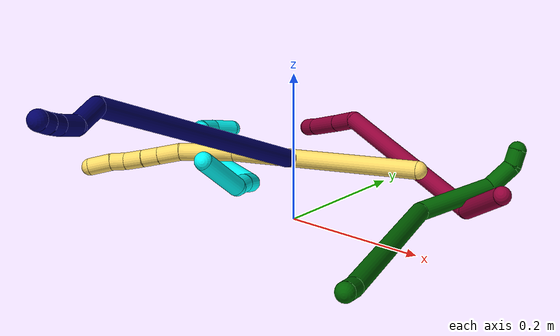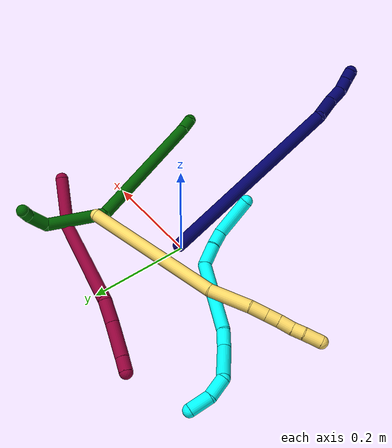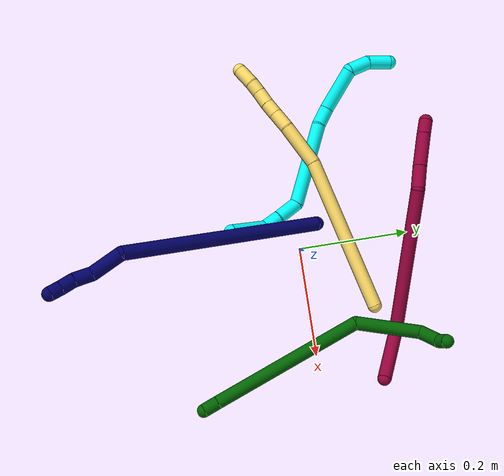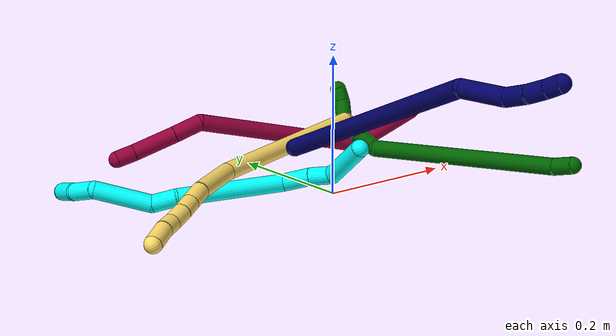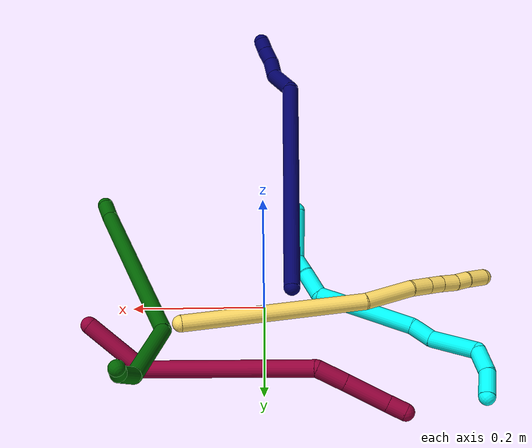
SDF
<sdf version="1.7">
 <world name="default">
  <model name="photoneo_s_sensor">
   <static>1</static>
   <pose>0 0 2 1.57079 1.57079 3.14159</pose>
   <link name="link">
    <inertial><mass>0.1</mass></inertial>
    <sensor name="sensor" type="depth">
     <update_rate>30</update_rate>
     <camera>
      <horizontal_fov>1.22</horizontal_fov>
      <image><width>1920</width><height>1200</height><format>B8G8R8</format></image>
      <clip><near>0.1</near><far>4</far></clip>
      <depth_camera><output>points</output></depth_camera>
     </camera>
     <plugin name="camera_plugin" filename="libgazebo_ros_depth_camera.so">
      <baseline>0.2</baseline>
      <alwaysOn>1</alwaysOn>
      <updateRate>0.0</updateRate>
      <cameraName>camera_ir</cameraName>
      <imageTopicName>/camera/color/image_raw</imageTopicName>
      <cameraInfoTopicName>/camera/color/camera_info</cameraInfoTopicName>
      <depthImageTopicName>/camera/depth/image_raw</depthImageTopicName>
      <depthImageCameraInfoTopicName>/camera/depth/camera_info</depthImageCameraInfoTopicName>
      <pointCloudTopicName>/camera/depth/points</pointCloudTopicName>
      <frameName>fr_optical</frameName>
      <pointCloudCutoff>0.1</pointCloudCutoff>
      <pointCloudCutoffMax>2.0</pointCloudCutoffMax>
      <distortionK1>0</distortionK1>
      <distortionK2>0</distortionK2>
      <distortionK3>0</distortionK3>
      <distortionT1>0</distortionT1>
      <distortionT2>0</distortionT2>
      <CxPrime>0</CxPrime>
      <Cx>0</Cx>
      <Cy>0</Cy>
      <focalLength>0</focalLength>
      <hackBaseline>0</hackBaseline>
     </plugin>
    </sensor>
   </link>
  </model>
  <model name="bin">
   <static>1</static>
   <link name="bottom">
    <collision name="collision-bottom">
     <pose>0 0 -0.01 0 -0 0</pose>
     <geometry><box><size>0.8 0.6 0.02</size></box></geometry>
     <surface>
      <friction><ode><mu>100</mu><mu2>100</mu2></ode></friction>
      <contact><collide_bitmask>65535</collide_bitmask></contact>
     </surface>
    </collision>
   </link>
   <link name="west_wall">
    <collision name="collision-west_wall">
     <pose>-0.41 0 0.1 0 -0 0</pose>
     <geometry><box><size>0.02 0.6 0.2</size></box></geometry>
     <surface>
      <friction><ode><mu>100</mu><mu2>100</mu2></ode></friction>
      <contact><collide_bitmask>65535</collide_bitmask></contact>
     </surface>
    </collision>
   </link>
   <link name="east_wall">
    <collision name="collision-east_wall">
     <pose>0.41 0 0.1 0 -0 0</pose>
     <geometry><box><size>0.02 0.6 0.2</size></box></geometry>
     <surface>
      <friction><ode><mu>100</mu><mu2>100</mu2></ode></friction>
      <contact><collide_bitmask>65535</collide_bitmask></contact>
     </surface>
    </collision>
   </link>
   <link name="south_wall">
    <collision name="collision-south_wall">
     <pose>0 -0.31 0.1 0 -0 0</pose>
     <geometry><box><size>0.8 0.02 0.2</size></box></geometry>
     <surface>
      <friction><ode><mu>100</mu><mu2>100</mu2></ode></friction>
      <contact><collide_bitmask>65535</collide_bitmask></contact>
     </surface>
    </collision>
   </link>
   <link name="north_wall">
    <collision name="collision-north_wall">
     <pose>0 0.31 0.1 0 -0 0</pose>
     <geometry><box><size>0.8 0.02 0.2</size></box></geometry>
     <surface>
      <friction><ode><mu>100</mu><mu2>100</mu2></ode></friction>
      <contact><collide_bitmask>65535</collide_bitmask></contact>
     </surface>
    </collision>
   </link>
  </model>
  <model name="3">
   <static>0</static>
   <link name="3">
    <collision name="collision-cylinder-e_1_1_4">
     <pose>0.022582 -0.002578 0.031527 0.081576 0.619987 0.026143</pose>
     <geometry><cylinder><radius>0.0125</radius><length>0.077731</length></cylinder></geometry>
     <surface>
      <friction><ode><mu>1.16</mu><mu2>1.16</mu2><slip1>0</slip1><slip2>0</slip2></ode></friction>
      <contact><ode><kp>1e+06</kp><kd>1</kd><max_vel>0</max_vel><min_depth>0.001</min_depth></ode></contact>
     </surface>
    </collision>
    <visual name="visual-cylinder-e_1_1_4">
     <pose>0.022582 -0.002578 0.031527 0.081576 0.619987 0.026143</pose>
     <geometry><cylinder><radius>0.0125</radius><length>0.077731</length></cylinder></geometry>
     <material><ambient>0.003922 1 0.996078 1</ambient></material>
    </visual>
    <collision name="collision-cylinder-e_2_4_5">
     <pose>0.044304 -0.007715 0.078894 0.160226 -0.053531 -0.004299</pose>
     <geometry><cylinder><radius>0.0125</radius><length>0.032137</length></cylinder></geometry>
     <surface>
      <friction><ode><mu>1.16</mu><mu2>1.16</mu2><slip1>0</slip1><slip2>0</slip2></ode></friction>
      <contact><ode><kp>1e+06</kp><kd>1</kd><max_vel>0</max_vel><min_depth>0.001</min_depth></ode></contact>
     </surface>
    </collision>
    <visual name="visual-cylinder-e_2_4_5">
     <pose>0.044304 -0.007715 0.078894 0.160226 -0.053531 -0.004299</pose>
     <geometry><cylinder><radius>0.0125</radius><length>0.032137</length></cylinder></geometry>
     <material><ambient>0.003922 1 0.996078 1</ambient></material>
    </visual>
    <collision name="collision-cylinder-e_3_5_6">
     <pose>0.043959 -0.011299 0.116284 0.047477 0.023874 0.000567</pose>
     <geometry><cylinder><radius>0.0125</radius><length>0.043162</length></cylinder></geometry>
     <surface>
      <friction><ode><mu>1.16</mu><mu2>1.16</mu2><slip1>0</slip1><slip2>0</slip2></ode></friction>
      <contact><ode><kp>1e+06</kp><kd>1</kd><max_vel>0</max_vel><min_depth>0.001</min_depth></ode></contact>
     </surface>
    </collision>
    <visual name="visual-cylinder-e_3_5_6">
     <pose>0.043959 -0.011299 0.116284 0.047477 0.023874 0.000567</pose>
     <geometry><cylinder><radius>0.0125</radius><length>0.043162</length></cylinder></geometry>
     <material><ambient>0.003922 1 0.996078 1</ambient></material>
    </visual>
    <collision name="collision-cylinder-e_4_6_7">
     <pose>0.006353 0.010183 0.198918 -0.353014 -0.529759 0.096688</pose>
     <geometry><cylinder><radius>0.0125</radius><length>0.150877</length></cylinder></geometry>
     <surface>
      <friction><ode><mu>1.16</mu><mu2>1.16</mu2><slip1>0</slip1><slip2>0</slip2></ode></friction>
      <contact><ode><kp>1e+06</kp><kd>1</kd><max_vel>0</max_vel><min_depth>0.001</min_depth></ode></contact>
     </surface>
    </collision>
    <visual name="visual-cylinder-e_4_6_7">
     <pose>0.006353 0.010183 0.198918 -0.353014 -0.529759 0.096688</pose>
     <geometry><cylinder><radius>0.0125</radius><length>0.150877</length></cylinder></geometry>
     <material><ambient>0.003922 1 0.996078 1</ambient></material>
    </visual>
    <collision name="collision-cylinder-e_5_7_8">
     <pose>-0.036681 0.037104 0.276254 -0.26521 -0.28389 0.038119</pose>
     <geometry><cylinder><radius>0.0125</radius><length>0.035084</length></cylinder></geometry>
     <surface>
      <friction><ode><mu>1.16</mu><mu2>1.16</mu2><slip1>0</slip1><slip2>0</slip2></ode></friction>
      <contact><ode><kp>1e+06</kp><kd>1</kd><max_vel>0</max_vel><min_depth>0.001</min_depth></ode></contact>
     </surface>
    </collision>
    <visual name="visual-cylinder-e_5_7_8">
     <pose>-0.036681 0.037104 0.276254 -0.26521 -0.28389 0.038119</pose>
     <geometry><cylinder><radius>0.0125</radius><length>0.035084</length></cylinder></geometry>
     <material><ambient>0.003922 1 0.996078 1</ambient></material>
    </visual>
    <collision name="collision-cylinder-e_6_8_9">
     <pose>-0.065926 0.037622 0.324621 0.120714 -0.644837 -0.040371</pose>
     <geometry><cylinder><radius>0.0125</radius><length>0.08096</length></cylinder></geometry>
     <surface>
      <friction><ode><mu>1.16</mu><mu2>1.16</mu2><slip1>0</slip1><slip2>0</slip2></ode></friction>
      <contact><ode><kp>1e+06</kp><kd>1</kd><max_vel>0</max_vel><min_depth>0.001</min_depth></ode></contact>
     </surface>
    </collision>
    <visual name="visual-cylinder-e_6_8_9">
     <pose>-0.065926 0.037622 0.324621 0.120714 -0.644837 -0.040371</pose>
     <geometry><cylinder><radius>0.0125</radius><length>0.08096</length></cylinder></geometry>
     <material><ambient>0.003922 1 0.996078 1</ambient></material>
    </visual>
    <collision name="collision-cylinder-e_7_9_10">
     <pose>-0.08801 0.028973 0.375377 0.249661 0.116291 0.014609</pose>
     <geometry><cylinder><radius>0.0125</radius><length>0.038735</length></cylinder></geometry>
     <surface>
      <friction><ode><mu>1.16</mu><mu2>1.16</mu2><slip1>0</slip1><slip2>0</slip2></ode></friction>
      <contact><ode><kp>1e+06</kp><kd>1</kd><max_vel>0</max_vel><min_depth>0.001</min_depth></ode></contact>
     </surface>
    </collision>
    <visual name="visual-cylinder-e_7_9_10">
     <pose>-0.08801 0.028973 0.375377 0.249661 0.116291 0.014609</pose>
     <geometry><cylinder><radius>0.0125</radius><length>0.038735</length></cylinder></geometry>
     <material><ambient>0.003922 1 0.996078 1</ambient></material>
    </visual>
    <collision name="collision-cylinder-e_8_10_2">
     <pose>-0.078199 0.014383 0.410532 0.537257 0.374879 0.104329</pose>
     <geometry><cylinder><radius>0.0125</radius><length>0.041314</length></cylinder></geometry>
     <surface>
      <friction><ode><mu>1.16</mu><mu2>1.16</mu2><slip1>0</slip1><slip2>0</slip2></ode></friction>
      <contact><ode><kp>1e+06</kp><kd>1</kd><max_vel>0</max_vel><min_depth>0.001</min_depth></ode></contact>
     </surface>
    </collision>
    <visual name="visual-cylinder-e_8_10_2">
     <pose>-0.078199 0.014383 0.410532 0.537257 0.374879 0.104329</pose>
     <geometry><cylinder><radius>0.0125</radius><length>0.041314</length></cylinder></geometry>
     <material><ambient>0.003922 1 0.996078 1</ambient></material>
    </visual>
    <collision name="collision-sphere-2">
     <pose>-0.070635 0.004545 0.427046 0 -0 0</pose>
     <geometry><sphere><radius>0.0125</radius></sphere></geometry>
     <surface>
      <friction><ode><mu>1.16</mu><mu2>1.16</mu2><slip1>0</slip1><slip2>0</slip2></ode></friction>
      <contact><ode><kp>1e+06</kp><kd>1</kd><max_vel>0</max_vel><min_depth>0.001</min_depth></ode></contact>
     </surface>
    </collision>
    <visual name="visual-sphere-2">
     <pose>-0.070635 0.004545 0.427046 0 -0 0</pose>
     <geometry><sphere><radius>0.0125</radius></sphere></geometry>
     <material><ambient>0.003922 1 0.996078 1</ambient></material>
    </visual>
    <collision name="collision-sphere-10">
     <pose>-0.085762 0.02422 0.394018 0 -0 0</pose>
     <geometry><sphere><radius>0.0125</radius></sphere></geometry>
     <surface>
      <friction><ode><mu>1.16</mu><mu2>1.16</mu2><slip1>0</slip1><slip2>0</slip2></ode></friction>
      <contact><ode><kp>1e+06</kp><kd>1</kd><max_vel>0</max_vel><min_depth>0.001</min_depth></ode></contact>
     </surface>
    </collision>
    <visual name="visual-sphere-10">
     <pose>-0.085762 0.02422 0.394018 0 -0 0</pose>
     <geometry><sphere><radius>0.0125</radius></sphere></geometry>
     <material><ambient>0.003922 1 0.996078 1</ambient></material>
    </visual>
    <collision name="collision-sphere-9">
     <pose>-0.090257 0.033726 0.356737 0 -0 0</pose>
     <geometry><sphere><radius>0.0125</radius></sphere></geometry>
     <surface>
      <friction><ode><mu>1.16</mu><mu2>1.16</mu2><slip1>0</slip1><slip2>0</slip2></ode></friction>
      <contact><ode><kp>1e+06</kp><kd>1</kd><max_vel>0</max_vel><min_depth>0.001</min_depth></ode></contact>
     </surface>
    </collision>
    <visual name="visual-sphere-9">
     <pose>-0.090257 0.033726 0.356737 0 -0 0</pose>
     <geometry><sphere><radius>0.0125</radius></sphere></geometry>
     <material><ambient>0.003922 1 0.996078 1</ambient></material>
    </visual>
    <collision name="collision-sphere-4">
     <pose>0.045164 -0.005155 0.063054 0 -0 0</pose>
     <geometry><sphere><radius>0.0125</radius></sphere></geometry>
     <surface>
      <friction><ode><mu>1.16</mu><mu2>1.16</mu2><slip1>0</slip1><slip2>0</slip2></ode></friction>
      <contact><ode><kp>1e+06</kp><kd>1</kd><max_vel>0</max_vel><min_depth>0.001</min_depth></ode></contact>
     </surface>
    </collision>
    <visual name="visual-sphere-4">
     <pose>0.045164 -0.005155 0.063054 0 -0 0</pose>
     <geometry><sphere><radius>0.0125</radius></sphere></geometry>
     <material><ambient>0.003922 1 0.996078 1</ambient></material>
    </visual>
    <collision name="collision-sphere-1">
     <geometry><sphere><radius>0.0125</radius></sphere></geometry>
     <surface>
      <friction><ode><mu>1.16</mu><mu2>1.16</mu2><slip1>0</slip1><slip2>0</slip2></ode></friction>
      <contact><ode><kp>1e+06</kp><kd>1</kd><max_vel>0</max_vel><min_depth>0.001</min_depth></ode></contact>
     </surface>
    </collision>
    <visual name="visual-sphere-1">
     <geometry><sphere><radius>0.0125</radius></sphere></geometry>
     <material><ambient>0.003922 1 0.996078 1</ambient></material>
    </visual>
    <collision name="collision-sphere-8">
     <pose>-0.041594 0.041518 0.292505 0 -0 0</pose>
     <geometry><sphere><radius>0.0125</radius></sphere></geometry>
     <surface>
      <friction><ode><mu>1.16</mu><mu2>1.16</mu2><slip1>0</slip1><slip2>0</slip2></ode></friction>
      <contact><ode><kp>1e+06</kp><kd>1</kd><max_vel>0</max_vel><min_depth>0.001</min_depth></ode></contact>
     </surface>
    </collision>
    <visual name="visual-sphere-8">
     <pose>-0.041594 0.041518 0.292505 0 -0 0</pose>
     <geometry><sphere><radius>0.0125</radius></sphere></geometry>
     <material><ambient>0.003922 1 0.996078 1</ambient></material>
    </visual>
    <collision name="collision-sphere-5">
     <pose>0.043444 -0.010275 0.094734 0 -0 0</pose>
     <geometry><sphere><radius>0.0125</radius></sphere></geometry>
     <surface>
      <friction><ode><mu>1.16</mu><mu2>1.16</mu2><slip1>0</slip1><slip2>0</slip2></ode></friction>
      <contact><ode><kp>1e+06</kp><kd>1</kd><max_vel>0</max_vel><min_depth>0.001</min_depth></ode></contact>
     </surface>
    </collision>
    <visual name="visual-sphere-5">
     <pose>0.043444 -0.010275 0.094734 0 -0 0</pose>
     <geometry><sphere><radius>0.0125</radius></sphere></geometry>
     <material><ambient>0.003922 1 0.996078 1</ambient></material>
    </visual>
    <collision name="collision-sphere-6">
     <pose>0.044475 -0.012323 0.137834 0 -0 0</pose>
     <geometry><sphere><radius>0.0125</radius></sphere></geometry>
     <surface>
      <friction><ode><mu>1.16</mu><mu2>1.16</mu2><slip1>0</slip1><slip2>0</slip2></ode></friction>
      <contact><ode><kp>1e+06</kp><kd>1</kd><max_vel>0</max_vel><min_depth>0.001</min_depth></ode></contact>
     </surface>
    </collision>
    <visual name="visual-sphere-6">
     <pose>0.044475 -0.012323 0.137834 0 -0 0</pose>
     <geometry><sphere><radius>0.0125</radius></sphere></geometry>
     <material><ambient>0.003922 1 0.996078 1</ambient></material>
    </visual>
    <collision name="collision-sphere-7">
     <pose>-0.031768 0.03269 0.260002 0 -0 0</pose>
     <geometry><sphere><radius>0.0125</radius></sphere></geometry>
     <surface>
      <friction><ode><mu>1.16</mu><mu2>1.16</mu2><slip1>0</slip1><slip2>0</slip2></ode></friction>
      <contact><ode><kp>1e+06</kp><kd>1</kd><max_vel>0</max_vel><min_depth>0.001</min_depth></ode></contact>
     </surface>
    </collision>
    <visual name="visual-sphere-7">
     <pose>-0.031768 0.03269 0.260002 0 -0 0</pose>
     <geometry><sphere><radius>0.0125</radius></sphere></geometry>
     <material><ambient>0.003922 1 0.996078 1</ambient></material>
    </visual>
    <inertial>
     <pose>-0.014458 0.013329 0.214983 0 -0 0</pose>
     <mass>0.5</mass>
     <inertia>
      <ixx>0.000373</ixx>
      <ixy>0</ixy>
      <ixz>0</ixz>
      <iyy>0.000422</iyy>
      <iyz>0</iyz>
      <izz>0.000108</izz>
     </inertia>
    </inertial>
   </link>
   <pose>-0.051079 -0.116817 0.099664 -2.0619 0.823235 0.178486</pose>
  </model>
  <model name="5">
   <static>0</static>
   <link name="5">
    <collision name="collision-cylinder-e_1_1_4">
     <pose>-0.062944 -0.026239 0.12155 0.212605 -0.468583 -0.050925</pose>
     <geometry><cylinder><radius>0.0125</radius><length>0.278747</length></cylinder></geometry>
     <surface>
      <friction><ode><mu>1.16</mu><mu2>1.16</mu2><slip1>0</slip1><slip2>0</slip2></ode></friction>
      <contact><ode><kp>1e+06</kp><kd>1</kd><max_vel>0</max_vel><min_depth>0.001</min_depth></ode></contact>
     </surface>
    </collision>
    <visual name="visual-cylinder-e_1_1_4">
     <pose>-0.062944 -0.026239 0.12155 0.212605 -0.468583 -0.050925</pose>
     <geometry><cylinder><radius>0.0125</radius><length>0.278747</length></cylinder></geometry>
     <material><ambient>1 0.858824 0.4 1</ambient></material>
    </visual>
    <collision name="collision-cylinder-e_2_4_5">
     <pose>-0.150399 -0.053938 0.274703 0.046187 -0.659178 -0.015802</pose>
     <geometry><cylinder><radius>0.0125</radius><length>0.08004</length></cylinder></geometry>
     <surface>
      <friction><ode><mu>1.16</mu><mu2>1.16</mu2><slip1>0</slip1><slip2>0</slip2></ode></friction>
      <contact><ode><kp>1e+06</kp><kd>1</kd><max_vel>0</max_vel><min_depth>0.001</min_depth></ode></contact>
     </surface>
    </collision>
    <visual name="visual-cylinder-e_2_4_5">
     <pose>-0.150399 -0.053938 0.274703 0.046187 -0.659178 -0.015802</pose>
     <geometry><cylinder><radius>0.0125</radius><length>0.08004</length></cylinder></geometry>
     <material><ambient>1 0.858824 0.4 1</ambient></material>
    </visual>
    <collision name="collision-cylinder-e_3_5_6">
     <pose>-0.183757 -0.053366 0.319893 -0.148481 -0.572048 0.04374</pose>
     <geometry><cylinder><radius>0.0125</radius><length>0.032681</length></cylinder></geometry>
     <surface>
      <friction><ode><mu>1.16</mu><mu2>1.16</mu2><slip1>0</slip1><slip2>0</slip2></ode></friction>
      <contact><ode><kp>1e+06</kp><kd>1</kd><max_vel>0</max_vel><min_depth>0.001</min_depth></ode></contact>
     </surface>
    </collision>
    <visual name="visual-cylinder-e_3_5_6">
     <pose>-0.183757 -0.053366 0.319893 -0.148481 -0.572048 0.04374</pose>
     <geometry><cylinder><radius>0.0125</radius><length>0.032681</length></cylinder></geometry>
     <material><ambient>1 0.858824 0.4 1</ambient></material>
    </visual>
    <collision name="collision-cylinder-e_4_6_7">
     <pose>-0.199259 -0.049828 0.343753 -0.145527 -0.570149 0.042716</pose>
     <geometry><cylinder><radius>0.0125</radius><length>0.024665</length></cylinder></geometry>
     <surface>
      <friction><ode><mu>1.16</mu><mu2>1.16</mu2><slip1>0</slip1><slip2>0</slip2></ode></friction>
      <contact><ode><kp>1e+06</kp><kd>1</kd><max_vel>0</max_vel><min_depth>0.001</min_depth></ode></contact>
     </surface>
    </collision>
    <visual name="visual-cylinder-e_4_6_7">
     <pose>-0.199259 -0.049828 0.343753 -0.145527 -0.570149 0.042716</pose>
     <geometry><cylinder><radius>0.0125</radius><length>0.024665</length></cylinder></geometry>
     <material><ambient>1 0.858824 0.4 1</ambient></material>
    </visual>
    <collision name="collision-cylinder-e_5_7_8">
     <pose>-0.212714 -0.047312 0.36596 -0.084499 -0.516206 0.022319</pose>
     <geometry><cylinder><radius>0.0125</radius><length>0.027544</length></cylinder></geometry>
     <surface>
      <friction><ode><mu>1.16</mu><mu2>1.16</mu2><slip1>0</slip1><slip2>0</slip2></ode></friction>
      <contact><ode><kp>1e+06</kp><kd>1</kd><max_vel>0</max_vel><min_depth>0.001</min_depth></ode></contact>
     </surface>
    </collision>
    <visual name="visual-cylinder-e_5_7_8">
     <pose>-0.212714 -0.047312 0.36596 -0.084499 -0.516206 0.022319</pose>
     <geometry><cylinder><radius>0.0125</radius><length>0.027544</length></cylinder></geometry>
     <material><ambient>1 0.858824 0.4 1</ambient></material>
    </visual>
    <collision name="collision-cylinder-e_6_8_9">
     <pose>-0.22607 -0.04614 0.38678 -0.018126 -0.635755 0.005964</pose>
     <geometry><cylinder><radius>0.0125</radius><length>0.02209</length></cylinder></geometry>
     <surface>
      <friction><ode><mu>1.16</mu><mu2>1.16</mu2><slip1>0</slip1><slip2>0</slip2></ode></friction>
      <contact><ode><kp>1e+06</kp><kd>1</kd><max_vel>0</max_vel><min_depth>0.001</min_depth></ode></contact>
     </surface>
    </collision>
    <visual name="visual-cylinder-e_6_8_9">
     <pose>-0.22607 -0.04614 0.38678 -0.018126 -0.635755 0.005964</pose>
     <geometry><cylinder><radius>0.0125</radius><length>0.02209</length></cylinder></geometry>
     <material><ambient>1 0.858824 0.4 1</ambient></material>
    </visual>
    <collision name="collision-cylinder-e_7_9_2">
     <pose>-0.241974 -0.04299 0.40969 -0.209957 -0.577608 0.06259</pose>
     <geometry><cylinder><radius>0.0125</radius><length>0.034232</length></cylinder></geometry>
     <surface>
      <friction><ode><mu>1.16</mu><mu2>1.16</mu2><slip1>0</slip1><slip2>0</slip2></ode></friction>
      <contact><ode><kp>1e+06</kp><kd>1</kd><max_vel>0</max_vel><min_depth>0.001</min_depth></ode></contact>
     </surface>
    </collision>
    <visual name="visual-cylinder-e_7_9_2">
     <pose>-0.241974 -0.04299 0.40969 -0.209957 -0.577608 0.06259</pose>
     <geometry><cylinder><radius>0.0125</radius><length>0.034232</length></cylinder></geometry>
     <material><ambient>1 0.858824 0.4 1</ambient></material>
    </visual>
    <collision name="collision-sphere-2">
     <pose>-0.251319 -0.040002 0.423715 0 -0 0</pose>
     <geometry><sphere><radius>0.0125</radius></sphere></geometry>
     <surface>
      <friction><ode><mu>1.16</mu><mu2>1.16</mu2><slip1>0</slip1><slip2>0</slip2></ode></friction>
      <contact><ode><kp>1e+06</kp><kd>1</kd><max_vel>0</max_vel><min_depth>0.001</min_depth></ode></contact>
     </surface>
    </collision>
    <visual name="visual-sphere-2">
     <pose>-0.251319 -0.040002 0.423715 0 -0 0</pose>
     <geometry><sphere><radius>0.0125</radius></sphere></geometry>
     <material><ambient>1 0.858824 0.4 1</ambient></material>
    </visual>
    <collision name="collision-sphere-9">
     <pose>-0.232628 -0.045979 0.395666 0 -0 0</pose>
     <geometry><sphere><radius>0.0125</radius></sphere></geometry>
     <surface>
      <friction><ode><mu>1.16</mu><mu2>1.16</mu2><slip1>0</slip1><slip2>0</slip2></ode></friction>
      <contact><ode><kp>1e+06</kp><kd>1</kd><max_vel>0</max_vel><min_depth>0.001</min_depth></ode></contact>
     </surface>
    </collision>
    <visual name="visual-sphere-9">
     <pose>-0.232628 -0.045979 0.395666 0 -0 0</pose>
     <geometry><sphere><radius>0.0125</radius></sphere></geometry>
     <material><ambient>1 0.858824 0.4 1</ambient></material>
    </visual>
    <collision name="collision-sphere-4">
     <pose>-0.125888 -0.052478 0.243101 0 -0 0</pose>
     <geometry><sphere><radius>0.0125</radius></sphere></geometry>
     <surface>
      <friction><ode><mu>1.16</mu><mu2>1.16</mu2><slip1>0</slip1><slip2>0</slip2></ode></friction>
      <contact><ode><kp>1e+06</kp><kd>1</kd><max_vel>0</max_vel><min_depth>0.001</min_depth></ode></contact>
     </surface>
    </collision>
    <visual name="visual-sphere-4">
     <pose>-0.125888 -0.052478 0.243101 0 -0 0</pose>
     <geometry><sphere><radius>0.0125</radius></sphere></geometry>
     <material><ambient>1 0.858824 0.4 1</ambient></material>
    </visual>
    <collision name="collision-sphere-1">
     <geometry><sphere><radius>0.0125</radius></sphere></geometry>
     <surface>
      <friction><ode><mu>1.16</mu><mu2>1.16</mu2><slip1>0</slip1><slip2>0</slip2></ode></friction>
      <contact><ode><kp>1e+06</kp><kd>1</kd><max_vel>0</max_vel><min_depth>0.001</min_depth></ode></contact>
     </surface>
    </collision>
    <visual name="visual-sphere-1">
     <geometry><sphere><radius>0.0125</radius></sphere></geometry>
     <material><ambient>1 0.858824 0.4 1</ambient></material>
    </visual>
    <collision name="collision-sphere-8">
     <pose>-0.219511 -0.046301 0.377895 0 -0 0</pose>
     <geometry><sphere><radius>0.0125</radius></sphere></geometry>
     <surface>
      <friction><ode><mu>1.16</mu><mu2>1.16</mu2><slip1>0</slip1><slip2>0</slip2></ode></friction>
      <contact><ode><kp>1e+06</kp><kd>1</kd><max_vel>0</max_vel><min_depth>0.001</min_depth></ode></contact>
     </surface>
    </collision>
    <visual name="visual-sphere-8">
     <pose>-0.219511 -0.046301 0.377895 0 -0 0</pose>
     <geometry><sphere><radius>0.0125</radius></sphere></geometry>
     <material><ambient>1 0.858824 0.4 1</ambient></material>
    </visual>
    <collision name="collision-sphere-5">
     <pose>-0.17491 -0.055399 0.306305 0 -0 0</pose>
     <geometry><sphere><radius>0.0125</radius></sphere></geometry>
     <surface>
      <friction><ode><mu>1.16</mu><mu2>1.16</mu2><slip1>0</slip1><slip2>0</slip2></ode></friction>
      <contact><ode><kp>1e+06</kp><kd>1</kd><max_vel>0</max_vel><min_depth>0.001</min_depth></ode></contact>
     </surface>
    </collision>
    <visual name="visual-sphere-5">
     <pose>-0.17491 -0.055399 0.306305 0 -0 0</pose>
     <geometry><sphere><radius>0.0125</radius></sphere></geometry>
     <material><ambient>1 0.858824 0.4 1</ambient></material>
    </visual>
    <collision name="collision-sphere-6">
     <pose>-0.192603 -0.051334 0.333481 0 -0 0</pose>
     <geometry><sphere><radius>0.0125</radius></sphere></geometry>
     <surface>
      <friction><ode><mu>1.16</mu><mu2>1.16</mu2><slip1>0</slip1><slip2>0</slip2></ode></friction>
      <contact><ode><kp>1e+06</kp><kd>1</kd><max_vel>0</max_vel><min_depth>0.001</min_depth></ode></contact>
     </surface>
    </collision>
    <visual name="visual-sphere-6">
     <pose>-0.192603 -0.051334 0.333481 0 -0 0</pose>
     <geometry><sphere><radius>0.0125</radius></sphere></geometry>
     <material><ambient>1 0.858824 0.4 1</ambient></material>
    </visual>
    <collision name="collision-sphere-7">
     <pose>-0.205916 -0.048323 0.354025 0 -0 0</pose>
     <geometry><sphere><radius>0.0125</radius></sphere></geometry>
     <surface>
      <friction><ode><mu>1.16</mu><mu2>1.16</mu2><slip1>0</slip1><slip2>0</slip2></ode></friction>
      <contact><ode><kp>1e+06</kp><kd>1</kd><max_vel>0</max_vel><min_depth>0.001</min_depth></ode></contact>
     </surface>
    </collision>
    <visual name="visual-sphere-7">
     <pose>-0.205916 -0.048323 0.354025 0 -0 0</pose>
     <geometry><sphere><radius>0.0125</radius></sphere></geometry>
     <material><ambient>1 0.858824 0.4 1</ambient></material>
    </visual>
    <inertial>
     <pose>-0.11928 -0.036797 0.214902 0 -0 0</pose>
     <mass>0.5</mass>
     <inertia>
      <ixx>0.001565</ixx>
      <ixy>0</ixy>
      <ixz>0</ixz>
      <iyy>0.001757</iyy>
      <iyz>0</iyz>
      <izz>0.001231</izz>
     </inertia>
    </inertial>
   </link>
   <pose>0.119463 0.11426 0.06504 -2.11634 0.467312 1.24815</pose>
  </model>
  <model name="6">
   <static>0</static>
   <link name="6">
    <collision name="collision-cylinder-e_1_1_4">
     <pose>-0.002462 0.002434 0.014085 -0.171131 -0.170556 0.014665</pose>
     <geometry><cylinder><radius>0.0125</radius><length>0.029009</length></cylinder></geometry>
     <surface>
      <friction><ode><mu>1.16</mu><mu2>1.16</mu2><slip1>0</slip1><slip2>0</slip2></ode></friction>
      <contact><ode><kp>1e+06</kp><kd>1</kd><max_vel>0</max_vel><min_depth>0.001</min_depth></ode></contact>
     </surface>
    </collision>
    <visual name="visual-cylinder-e_1_1_4">
     <pose>-0.002462 0.002434 0.014085 -0.171131 -0.170556 0.014665</pose>
     <geometry><cylinder><radius>0.0125</radius><length>0.029009</length></cylinder></geometry>
     <material><ambient>0 0.392157 0.003922 1</ambient></material>
    </visual>
    <collision name="collision-cylinder-e_2_4_5">
     <pose>-0.005549 0.028288 0.17088 -0.162658 -0.004325 0.000353</pose>
     <geometry><cylinder><radius>0.0125</radius><length>0.28924</length></cylinder></geometry>
     <surface>
      <friction><ode><mu>1.16</mu><mu2>1.16</mu2><slip1>0</slip1><slip2>0</slip2></ode></friction>
      <contact><ode><kp>1e+06</kp><kd>1</kd><max_vel>0</max_vel><min_depth>0.001</min_depth></ode></contact>
     </surface>
    </collision>
    <visual name="visual-cylinder-e_2_4_5">
     <pose>-0.005549 0.028288 0.17088 -0.162658 -0.004325 0.000353</pose>
     <geometry><cylinder><radius>0.0125</radius><length>0.28924</length></cylinder></geometry>
     <material><ambient>0 0.392157 0.003922 1</ambient></material>
    </visual>
    <collision name="collision-cylinder-e_3_5_6">
     <pose>0.0013 0.094523 0.353864 -0.815972 0.126489 -0.054733</pose>
     <geometry><cylinder><radius>0.0125</radius><length>0.118507</length></cylinder></geometry>
     <surface>
      <friction><ode><mu>1.16</mu><mu2>1.16</mu2><slip1>0</slip1><slip2>0</slip2></ode></friction>
      <contact><ode><kp>1e+06</kp><kd>1</kd><max_vel>0</max_vel><min_depth>0.001</min_depth></ode></contact>
     </surface>
    </collision>
    <visual name="visual-cylinder-e_3_5_6">
     <pose>0.0013 0.094523 0.353864 -0.815972 0.126489 -0.054733</pose>
     <geometry><cylinder><radius>0.0125</radius><length>0.118507</length></cylinder></geometry>
     <material><ambient>0 0.392157 0.003922 1</ambient></material>
    </visual>
    <collision name="collision-cylinder-e_4_6_7">
     <pose>0.022006 0.151367 0.400424 -1.14954 0.710659 -0.47176</pose>
     <geometry><cylinder><radius>0.0125</radius><length>0.040566</length></cylinder></geometry>
     <surface>
      <friction><ode><mu>1.16</mu><mu2>1.16</mu2><slip1>0</slip1><slip2>0</slip2></ode></friction>
      <contact><ode><kp>1e+06</kp><kd>1</kd><max_vel>0</max_vel><min_depth>0.001</min_depth></ode></contact>
     </surface>
    </collision>
    <visual name="visual-cylinder-e_4_6_7">
     <pose>0.022006 0.151367 0.400424 -1.14954 0.710659 -0.47176</pose>
     <geometry><cylinder><radius>0.0125</radius><length>0.040566</length></cylinder></geometry>
     <material><ambient>0 0.392157 0.003922 1</ambient></material>
    </visual>
    <collision name="collision-cylinder-e_5_7_2">
     <pose>0.045377 0.168233 0.41092 -0.592898 1.10668 -0.372972</pose>
     <geometry><cylinder><radius>0.0125</radius><length>0.022678</length></cylinder></geometry>
     <surface>
      <friction><ode><mu>1.16</mu><mu2>1.16</mu2><slip1>0</slip1><slip2>0</slip2></ode></friction>
      <contact><ode><kp>1e+06</kp><kd>1</kd><max_vel>0</max_vel><min_depth>0.001</min_depth></ode></contact>
     </surface>
    </collision>
    <visual name="visual-cylinder-e_5_7_2">
     <pose>0.045377 0.168233 0.41092 -0.592898 1.10668 -0.372972</pose>
     <geometry><cylinder><radius>0.0125</radius><length>0.022678</length></cylinder></geometry>
     <material><ambient>0 0.392157 0.003922 1</ambient></material>
    </visual>
    <collision name="collision-sphere-2">
     <pose>0.055516 0.171069 0.415129 0 -0 0</pose>
     <geometry><sphere><radius>0.0125</radius></sphere></geometry>
     <surface>
      <friction><ode><mu>1.16</mu><mu2>1.16</mu2><slip1>0</slip1><slip2>0</slip2></ode></friction>
      <contact><ode><kp>1e+06</kp><kd>1</kd><max_vel>0</max_vel><min_depth>0.001</min_depth></ode></contact>
     </surface>
    </collision>
    <visual name="visual-sphere-2">
     <pose>0.055516 0.171069 0.415129 0 -0 0</pose>
     <geometry><sphere><radius>0.0125</radius></sphere></geometry>
     <material><ambient>0 0.392157 0.003922 1</ambient></material>
    </visual>
    <collision name="collision-sphere-7">
     <pose>0.035238 0.165396 0.406711 0 -0 0</pose>
     <geometry><sphere><radius>0.0125</radius></sphere></geometry>
     <surface>
      <friction><ode><mu>1.16</mu><mu2>1.16</mu2><slip1>0</slip1><slip2>0</slip2></ode></friction>
      <contact><ode><kp>1e+06</kp><kd>1</kd><max_vel>0</max_vel><min_depth>0.001</min_depth></ode></contact>
     </surface>
    </collision>
    <visual name="visual-sphere-7">
     <pose>0.035238 0.165396 0.406711 0 -0 0</pose>
     <geometry><sphere><radius>0.0125</radius></sphere></geometry>
     <material><ambient>0 0.392157 0.003922 1</ambient></material>
    </visual>
    <collision name="collision-sphere-6">
     <pose>0.008775 0.137338 0.394138 0 -0 0</pose>
     <geometry><sphere><radius>0.0125</radius></sphere></geometry>
     <surface>
      <friction><ode><mu>1.16</mu><mu2>1.16</mu2><slip1>0</slip1><slip2>0</slip2></ode></friction>
      <contact><ode><kp>1e+06</kp><kd>1</kd><max_vel>0</max_vel><min_depth>0.001</min_depth></ode></contact>
     </surface>
    </collision>
    <visual name="visual-sphere-6">
     <pose>0.008775 0.137338 0.394138 0 -0 0</pose>
     <geometry><sphere><radius>0.0125</radius></sphere></geometry>
     <material><ambient>0 0.392157 0.003922 1</ambient></material>
    </visual>
    <collision name="collision-sphere-5">
     <pose>-0.006175 0.051708 0.31359 0 -0 0</pose>
     <geometry><sphere><radius>0.0125</radius></sphere></geometry>
     <surface>
      <friction><ode><mu>1.16</mu><mu2>1.16</mu2><slip1>0</slip1><slip2>0</slip2></ode></friction>
      <contact><ode><kp>1e+06</kp><kd>1</kd><max_vel>0</max_vel><min_depth>0.001</min_depth></ode></contact>
     </surface>
    </collision>
    <visual name="visual-sphere-5">
     <pose>-0.006175 0.051708 0.31359 0 -0 0</pose>
     <geometry><sphere><radius>0.0125</radius></sphere></geometry>
     <material><ambient>0 0.392157 0.003922 1</ambient></material>
    </visual>
    <collision name="collision-sphere-1">
     <geometry><sphere><radius>0.0125</radius></sphere></geometry>
     <surface>
      <friction><ode><mu>1.16</mu><mu2>1.16</mu2><slip1>0</slip1><slip2>0</slip2></ode></friction>
      <contact><ode><kp>1e+06</kp><kd>1</kd><max_vel>0</max_vel><min_depth>0.001</min_depth></ode></contact>
     </surface>
    </collision>
    <visual name="visual-sphere-1">
     <geometry><sphere><radius>0.0125</radius></sphere></geometry>
     <material><ambient>0 0.392157 0.003922 1</ambient></material>
    </visual>
    <collision name="collision-sphere-4">
     <pose>-0.004924 0.004868 0.02817 0 -0 0</pose>
     <geometry><sphere><radius>0.0125</radius></sphere></geometry>
     <surface>
      <friction><ode><mu>1.16</mu><mu2>1.16</mu2><slip1>0</slip1><slip2>0</slip2></ode></friction>
      <contact><ode><kp>1e+06</kp><kd>1</kd><max_vel>0</max_vel><min_depth>0.001</min_depth></ode></contact>
     </surface>
    </collision>
    <visual name="visual-sphere-4">
     <pose>-0.004924 0.004868 0.02817 0 -0 0</pose>
     <geometry><sphere><radius>0.0125</radius></sphere></geometry>
     <material><ambient>0 0.392157 0.003922 1</ambient></material>
    </visual>
    <inertial>
     <pose>0.000799 0.05882 0.234664 0 -0 0</pose>
     <mass>0.5</mass>
     <inertia>
      <ixx>0.002173</ixx>
      <ixy>0</ixy>
      <ixz>0</ixz>
      <iyy>0.002113</iyy>
      <iyz>0</iyz>
      <izz>-0.000421</izz>
     </inertia>
    </inertial>
   </link>
   <pose>0.260234 -0.218007 0.042548 3.12 -1.53006 2.11424</pose>
  </model>
  <model name="7">
   <static>0</static>
   <link name="7">
    <collision name="collision-cylinder-e_1_1_4">
     <pose>-0.010071 -0.056593 0.171903 0.318039 -0.055587 -0.008917</pose>
     <geometry><cylinder><radius>0.0125</radius><length>0.362519</length></cylinder></geometry>
     <surface>
      <friction><ode><mu>1.16</mu><mu2>1.16</mu2><slip1>0</slip1><slip2>0</slip2></ode></friction>
      <contact><ode><kp>1e+06</kp><kd>1</kd><max_vel>0</max_vel><min_depth>0.001</min_depth></ode></contact>
     </surface>
    </collision>
    <visual name="visual-cylinder-e_1_1_4">
     <pose>-0.010071 -0.056593 0.171903 0.318039 -0.055587 -0.008917</pose>
     <geometry><cylinder><radius>0.0125</radius><length>0.362519</length></cylinder></geometry>
     <material><ambient>0.003922 0 0.403922 1</ambient></material>
    </visual>
    <collision name="collision-cylinder-e_2_4_5">
     <pose>-0.020639 -0.102813 0.371459 -0.358899 -0.016849 0.003056</pose>
     <geometry><cylinder><radius>0.0125</radius><length>0.059076</length></cylinder></geometry>
     <surface>
      <friction><ode><mu>1.16</mu><mu2>1.16</mu2><slip1>0</slip1><slip2>0</slip2></ode></friction>
      <contact><ode><kp>1e+06</kp><kd>1</kd><max_vel>0</max_vel><min_depth>0.001</min_depth></ode></contact>
     </surface>
    </collision>
    <visual name="visual-cylinder-e_2_4_5">
     <pose>-0.020639 -0.102813 0.371459 -0.358899 -0.016849 0.003056</pose>
     <geometry><cylinder><radius>0.0125</radius><length>0.059076</length></cylinder></geometry>
     <material><ambient>0.003922 0 0.403922 1</ambient></material>
    </visual>
    <collision name="collision-cylinder-e_3_5_6">
     <pose>-0.022376 -0.094034 0.415129 0.099219 -0.076849 -0.003817</pose>
     <geometry><cylinder><radius>0.0125</radius><length>0.03229</length></cylinder></geometry>
     <surface>
      <friction><ode><mu>1.16</mu><mu2>1.16</mu2><slip1>0</slip1><slip2>0</slip2></ode></friction>
      <contact><ode><kp>1e+06</kp><kd>1</kd><max_vel>0</max_vel><min_depth>0.001</min_depth></ode></contact>
     </surface>
    </collision>
    <visual name="visual-cylinder-e_3_5_6">
     <pose>-0.022376 -0.094034 0.415129 0.099219 -0.076849 -0.003817</pose>
     <geometry><cylinder><radius>0.0125</radius><length>0.03229</length></cylinder></geometry>
     <material><ambient>0.003922 0 0.403922 1</ambient></material>
    </visual>
    <collision name="collision-cylinder-e_4_6_7">
     <pose>-0.027324 -0.095792 0.443401 0.013343 -0.293833 -0.001975</pose>
     <geometry><cylinder><radius>0.0125</radius><length>0.025607</length></cylinder></geometry>
     <surface>
      <friction><ode><mu>1.16</mu><mu2>1.16</mu2><slip1>0</slip1><slip2>0</slip2></ode></friction>
      <contact><ode><kp>1e+06</kp><kd>1</kd><max_vel>0</max_vel><min_depth>0.001</min_depth></ode></contact>
     </surface>
    </collision>
    <visual name="visual-cylinder-e_4_6_7">
     <pose>-0.027324 -0.095792 0.443401 0.013343 -0.293833 -0.001975</pose>
     <geometry><cylinder><radius>0.0125</radius><length>0.025607</length></cylinder></geometry>
     <material><ambient>0.003922 0 0.403922 1</ambient></material>
    </visual>
    <collision name="collision-cylinder-e_5_7_2">
     <pose>-0.034098 -0.097013 0.465382 0.108359 -0.303704 -0.016598</pose>
     <geometry><cylinder><radius>0.0125</radius><length>0.020508</length></cylinder></geometry>
     <surface>
      <friction><ode><mu>1.16</mu><mu2>1.16</mu2><slip1>0</slip1><slip2>0</slip2></ode></friction>
      <contact><ode><kp>1e+06</kp><kd>1</kd><max_vel>0</max_vel><min_depth>0.001</min_depth></ode></contact>
     </surface>
    </collision>
    <visual name="visual-cylinder-e_5_7_2">
     <pose>-0.034098 -0.097013 0.465382 0.108359 -0.303704 -0.016598</pose>
     <geometry><cylinder><radius>0.0125</radius><length>0.020508</length></cylinder></geometry>
     <material><ambient>0.003922 0 0.403922 1</ambient></material>
    </visual>
    <collision name="collision-sphere-2">
     <pose>-0.037165 -0.098072 0.475109 0 -0 0</pose>
     <geometry><sphere><radius>0.0125</radius></sphere></geometry>
     <surface>
      <friction><ode><mu>1.16</mu><mu2>1.16</mu2><slip1>0</slip1><slip2>0</slip2></ode></friction>
      <contact><ode><kp>1e+06</kp><kd>1</kd><max_vel>0</max_vel><min_depth>0.001</min_depth></ode></contact>
     </surface>
    </collision>
    <visual name="visual-sphere-2">
     <pose>-0.037165 -0.098072 0.475109 0 -0 0</pose>
     <geometry><sphere><radius>0.0125</radius></sphere></geometry>
     <material><ambient>0.003922 0 0.403922 1</ambient></material>
    </visual>
    <collision name="collision-sphere-7">
     <pose>-0.031032 -0.095955 0.455655 0 -0 0</pose>
     <geometry><sphere><radius>0.0125</radius></sphere></geometry>
     <surface>
      <friction><ode><mu>1.16</mu><mu2>1.16</mu2><slip1>0</slip1><slip2>0</slip2></ode></friction>
      <contact><ode><kp>1e+06</kp><kd>1</kd><max_vel>0</max_vel><min_depth>0.001</min_depth></ode></contact>
     </surface>
    </collision>
    <visual name="visual-sphere-7">
     <pose>-0.031032 -0.095955 0.455655 0 -0 0</pose>
     <geometry><sphere><radius>0.0125</radius></sphere></geometry>
     <material><ambient>0.003922 0 0.403922 1</ambient></material>
    </visual>
    <collision name="collision-sphere-6">
     <pose>-0.023615 -0.095628 0.431148 0 -0 0</pose>
     <geometry><sphere><radius>0.0125</radius></sphere></geometry>
     <surface>
      <friction><ode><mu>1.16</mu><mu2>1.16</mu2><slip1>0</slip1><slip2>0</slip2></ode></friction>
      <contact><ode><kp>1e+06</kp><kd>1</kd><max_vel>0</max_vel><min_depth>0.001</min_depth></ode></contact>
     </surface>
    </collision>
    <visual name="visual-sphere-6">
     <pose>-0.023615 -0.095628 0.431148 0 -0 0</pose>
     <geometry><sphere><radius>0.0125</radius></sphere></geometry>
     <material><ambient>0.003922 0 0.403922 1</ambient></material>
    </visual>
    <collision name="collision-sphere-5">
     <pose>-0.021136 -0.092439 0.399111 0 -0 0</pose>
     <geometry><sphere><radius>0.0125</radius></sphere></geometry>
     <surface>
      <friction><ode><mu>1.16</mu><mu2>1.16</mu2><slip1>0</slip1><slip2>0</slip2></ode></friction>
      <contact><ode><kp>1e+06</kp><kd>1</kd><max_vel>0</max_vel><min_depth>0.001</min_depth></ode></contact>
     </surface>
    </collision>
    <visual name="visual-sphere-5">
     <pose>-0.021136 -0.092439 0.399111 0 -0 0</pose>
     <geometry><sphere><radius>0.0125</radius></sphere></geometry>
     <material><ambient>0.003922 0 0.403922 1</ambient></material>
    </visual>
    <collision name="collision-sphere-1">
     <geometry><sphere><radius>0.0125</radius></sphere></geometry>
     <surface>
      <friction><ode><mu>1.16</mu><mu2>1.16</mu2><slip1>0</slip1><slip2>0</slip2></ode></friction>
      <contact><ode><kp>1e+06</kp><kd>1</kd><max_vel>0</max_vel><min_depth>0.001</min_depth></ode></contact>
     </surface>
    </collision>
    <visual name="visual-sphere-1">
     <geometry><sphere><radius>0.0125</radius></sphere></geometry>
     <material><ambient>0.003922 0 0.403922 1</ambient></material>
    </visual>
    <collision name="collision-sphere-4">
     <pose>-0.020141 -0.113186 0.343807 0 -0 0</pose>
     <geometry><sphere><radius>0.0125</radius></sphere></geometry>
     <surface>
      <friction><ode><mu>1.16</mu><mu2>1.16</mu2><slip1>0</slip1><slip2>0</slip2></ode></friction>
      <contact><ode><kp>1e+06</kp><kd>1</kd><max_vel>0</max_vel><min_depth>0.001</min_depth></ode></contact>
     </surface>
    </collision>
    <visual name="visual-sphere-4">
     <pose>-0.020141 -0.113186 0.343807 0 -0 0</pose>
     <geometry><sphere><radius>0.0125</radius></sphere></geometry>
     <material><ambient>0.003922 0 0.403922 1</ambient></material>
    </visual>
    <inertial>
     <pose>-0.013983 -0.068137 0.237131 0 -0 0</pose>
     <mass>0.5</mass>
     <inertia>
      <ixx>0.003967</ixx>
      <ixy>0</ixy>
      <ixz>0</ixz>
      <iyy>0.003768</iyy>
      <iyz>0</iyz>
      <izz>0.001498</izz>
     </inertia>
    </inertial>
   </link>
   <pose>-0.04154 0.034976 0.067475 -1.36052 0.755723 -2.80858</pose>
  </model>
  <model name="8">
   <static>0</static>
   <link name="8">
    <collision name="collision-cylinder-e_1_1_4">
     <pose>-0.026852 -0.009538 -0.041366 2.91497 -0.563999 -2.39305</pose>
     <geometry><cylinder><radius>0.0125</radius><length>0.100461</length></cylinder></geometry>
     <surface>
      <friction><ode><mu>1.16</mu><mu2>1.16</mu2><slip1>0</slip1><slip2>0</slip2></ode></friction>
      <contact><ode><kp>1e+06</kp><kd>1</kd><max_vel>0</max_vel><min_depth>0.001</min_depth></ode></contact>
     </surface>
    </collision>
    <visual name="visual-cylinder-e_1_1_4">
     <pose>-0.026852 -0.009538 -0.041366 2.91497 -0.563999 -2.39305</pose>
     <geometry><cylinder><radius>0.0125</radius><length>0.100461</length></cylinder></geometry>
     <material><ambient>0.584314 0 0.227451 1</ambient></material>
    </visual>
    <collision name="collision-cylinder-e_2_4_5">
     <pose>-0.17518 0.009505 -0.125345 -2.5508 -1.17114 2.28119</pose>
     <geometry><cylinder><radius>0.0125</radius><length>0.263738</length></cylinder></geometry>
     <surface>
      <friction><ode><mu>1.16</mu><mu2>1.16</mu2><slip1>0</slip1><slip2>0</slip2></ode></friction>
      <contact><ode><kp>1e+06</kp><kd>1</kd><max_vel>0</max_vel><min_depth>0.001</min_depth></ode></contact>
     </surface>
    </collision>
    <visual name="visual-cylinder-e_2_4_5">
     <pose>-0.17518 0.009505 -0.125345 -2.5508 -1.17114 2.28119</pose>
     <geometry><cylinder><radius>0.0125</radius><length>0.263738</length></cylinder></geometry>
     <material><ambient>0.584314 0 0.227451 1</ambient></material>
    </visual>
    <collision name="collision-cylinder-e_3_5_6">
     <pose>-0.312104 0.033972 -0.182731 2.87004 -0.789035 -2.50746</pose>
     <geometry><cylinder><radius>0.0125</radius><length>0.043533</length></cylinder></geometry>
     <surface>
      <friction><ode><mu>1.16</mu><mu2>1.16</mu2><slip1>0</slip1><slip2>0</slip2></ode></friction>
      <contact><ode><kp>1e+06</kp><kd>1</kd><max_vel>0</max_vel><min_depth>0.001</min_depth></ode></contact>
     </surface>
    </collision>
    <visual name="visual-cylinder-e_3_5_6">
     <pose>-0.312104 0.033972 -0.182731 2.87004 -0.789035 -2.50746</pose>
     <geometry><cylinder><radius>0.0125</radius><length>0.043533</length></cylinder></geometry>
     <material><ambient>0.584314 0 0.227451 1</ambient></material>
    </visual>
    <collision name="collision-cylinder-e_4_6_7">
     <pose>-0.350599 0.024772 -0.220122 2.92037 -0.782479 -2.61558</pose>
     <geometry><cylinder><radius>0.0125</radius><length>0.06538</length></cylinder></geometry>
     <surface>
      <friction><ode><mu>1.16</mu><mu2>1.16</mu2><slip1>0</slip1><slip2>0</slip2></ode></friction>
      <contact><ode><kp>1e+06</kp><kd>1</kd><max_vel>0</max_vel><min_depth>0.001</min_depth></ode></contact>
     </surface>
    </collision>
    <visual name="visual-cylinder-e_4_6_7">
     <pose>-0.350599 0.024772 -0.220122 2.92037 -0.782479 -2.61558</pose>
     <geometry><cylinder><radius>0.0125</radius><length>0.06538</length></cylinder></geometry>
     <material><ambient>0.584314 0 0.227451 1</ambient></material>
    </visual>
    <collision name="collision-cylinder-e_5_7_2">
     <pose>-0.383311 0.018185 -0.251964 2.98044 -0.802135 -2.76524</pose>
     <geometry><cylinder><radius>0.0125</radius><length>0.026888</length></cylinder></geometry>
     <surface>
      <friction><ode><mu>1.16</mu><mu2>1.16</mu2><slip1>0</slip1><slip2>0</slip2></ode></friction>
      <contact><ode><kp>1e+06</kp><kd>1</kd><max_vel>0</max_vel><min_depth>0.001</min_depth></ode></contact>
     </surface>
    </collision>
    <visual name="visual-cylinder-e_5_7_2">
     <pose>-0.383311 0.018185 -0.251964 2.98044 -0.802135 -2.76524</pose>
     <geometry><cylinder><radius>0.0125</radius><length>0.026888</length></cylinder></geometry>
     <material><ambient>0.584314 0 0.227451 1</ambient></material>
    </visual>
    <collision name="collision-sphere-2">
     <pose>-0.392975 0.016686 -0.261189 0 -0 0</pose>
     <geometry><sphere><radius>0.0125</radius></sphere></geometry>
     <surface>
      <friction><ode><mu>1.16</mu><mu2>1.16</mu2><slip1>0</slip1><slip2>0</slip2></ode></friction>
      <contact><ode><kp>1e+06</kp><kd>1</kd><max_vel>0</max_vel><min_depth>0.001</min_depth></ode></contact>
     </surface>
    </collision>
    <visual name="visual-sphere-2">
     <pose>-0.392975 0.016686 -0.261189 0 -0 0</pose>
     <geometry><sphere><radius>0.0125</radius></sphere></geometry>
     <material><ambient>0.584314 0 0.227451 1</ambient></material>
    </visual>
    <collision name="collision-sphere-7">
     <pose>-0.373647 0.019685 -0.24274 0 -0 0</pose>
     <geometry><sphere><radius>0.0125</radius></sphere></geometry>
     <surface>
      <friction><ode><mu>1.16</mu><mu2>1.16</mu2><slip1>0</slip1><slip2>0</slip2></ode></friction>
      <contact><ode><kp>1e+06</kp><kd>1</kd><max_vel>0</max_vel><min_depth>0.001</min_depth></ode></contact>
     </surface>
    </collision>
    <visual name="visual-sphere-7">
     <pose>-0.373647 0.019685 -0.24274 0 -0 0</pose>
     <geometry><sphere><radius>0.0125</radius></sphere></geometry>
     <material><ambient>0.584314 0 0.227451 1</ambient></material>
    </visual>
    <collision name="collision-sphere-6">
     <pose>-0.327551 0.029859 -0.197504 0 -0 0</pose>
     <geometry><sphere><radius>0.0125</radius></sphere></geometry>
     <surface>
      <friction><ode><mu>1.16</mu><mu2>1.16</mu2><slip1>0</slip1><slip2>0</slip2></ode></friction>
      <contact><ode><kp>1e+06</kp><kd>1</kd><max_vel>0</max_vel><min_depth>0.001</min_depth></ode></contact>
     </surface>
    </collision>
    <visual name="visual-sphere-6">
     <pose>-0.327551 0.029859 -0.197504 0 -0 0</pose>
     <geometry><sphere><radius>0.0125</radius></sphere></geometry>
     <material><ambient>0.584314 0 0.227451 1</ambient></material>
    </visual>
    <collision name="collision-sphere-5">
     <pose>-0.296657 0.038085 -0.167958 0 -0 0</pose>
     <geometry><sphere><radius>0.0125</radius></sphere></geometry>
     <surface>
      <friction><ode><mu>1.16</mu><mu2>1.16</mu2><slip1>0</slip1><slip2>0</slip2></ode></friction>
      <contact><ode><kp>1e+06</kp><kd>1</kd><max_vel>0</max_vel><min_depth>0.001</min_depth></ode></contact>
     </surface>
    </collision>
    <visual name="visual-sphere-5">
     <pose>-0.296657 0.038085 -0.167958 0 -0 0</pose>
     <geometry><sphere><radius>0.0125</radius></sphere></geometry>
     <material><ambient>0.584314 0 0.227451 1</ambient></material>
    </visual>
    <collision name="collision-sphere-1">
     <geometry><sphere><radius>0.0125</radius></sphere></geometry>
     <surface>
      <friction><ode><mu>1.16</mu><mu2>1.16</mu2><slip1>0</slip1><slip2>0</slip2></ode></friction>
      <contact><ode><kp>1e+06</kp><kd>1</kd><max_vel>0</max_vel><min_depth>0.001</min_depth></ode></contact>
     </surface>
    </collision>
    <visual name="visual-sphere-1">
     <geometry><sphere><radius>0.0125</radius></sphere></geometry>
     <material><ambient>0.584314 0 0.227451 1</ambient></material>
    </visual>
    <collision name="collision-sphere-4">
     <pose>-0.053704 -0.019076 -0.082731 0 -0 0</pose>
     <geometry><sphere><radius>0.0125</radius></sphere></geometry>
     <surface>
      <friction><ode><mu>1.16</mu><mu2>1.16</mu2><slip1>0</slip1><slip2>0</slip2></ode></friction>
      <contact><ode><kp>1e+06</kp><kd>1</kd><max_vel>0</max_vel><min_depth>0.001</min_depth></ode></contact>
     </surface>
    </collision>
    <visual name="visual-sphere-4">
     <pose>-0.053704 -0.019076 -0.082731 0 -0 0</pose>
     <geometry><sphere><radius>0.0125</radius></sphere></geometry>
     <material><ambient>0.584314 0 0.227451 1</ambient></material>
    </visual>
    <inertial>
     <pose>-0.19143 0.010272 -0.13267 0 -0 0</pose>
     <mass>0.5</mass>
     <inertia>
      <ixx>-0.000109</ixx>
      <ixy>0</ixy>
      <ixz>0</ixz>
      <iyy>0.001928</iyy>
      <iyz>0</iyz>
      <izz>0.00116</izz>
     </inertia>
    </inertial>
   </link>
   <pose>0.251524 0.111511 0.060901 0.853998 0.305033 0.129352</pose>
  </model>
 </world>
</sdf>
